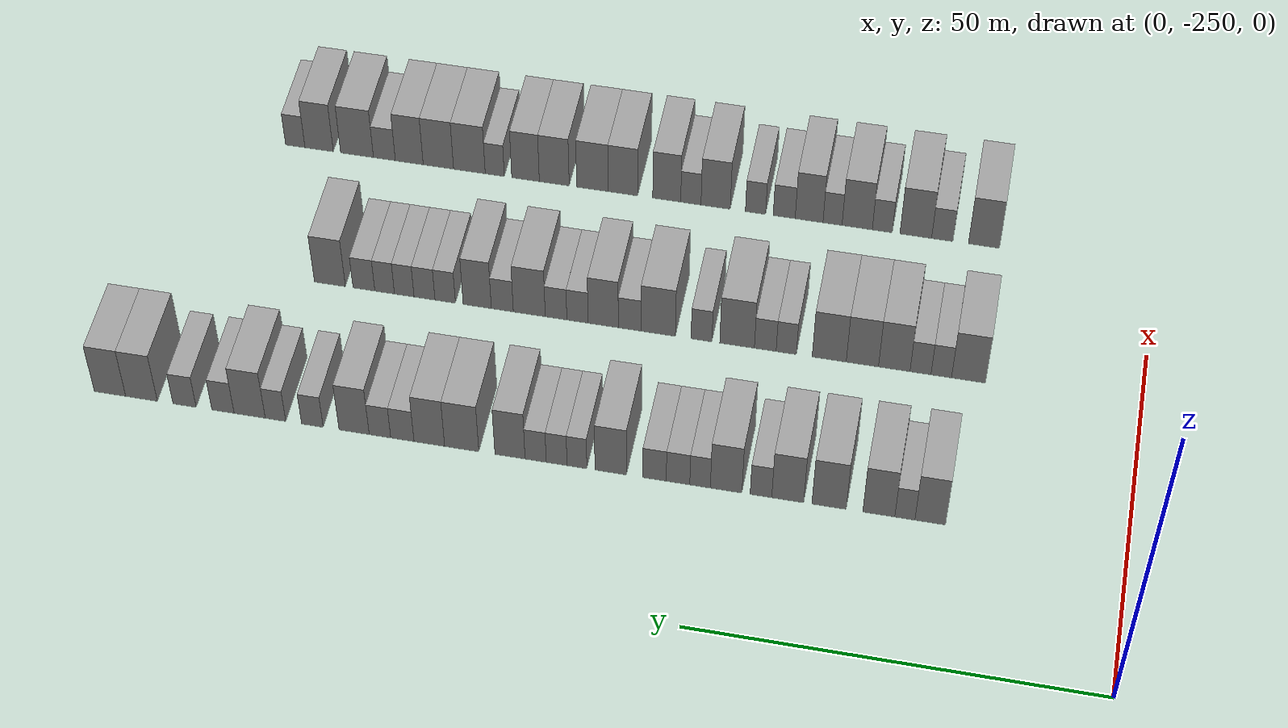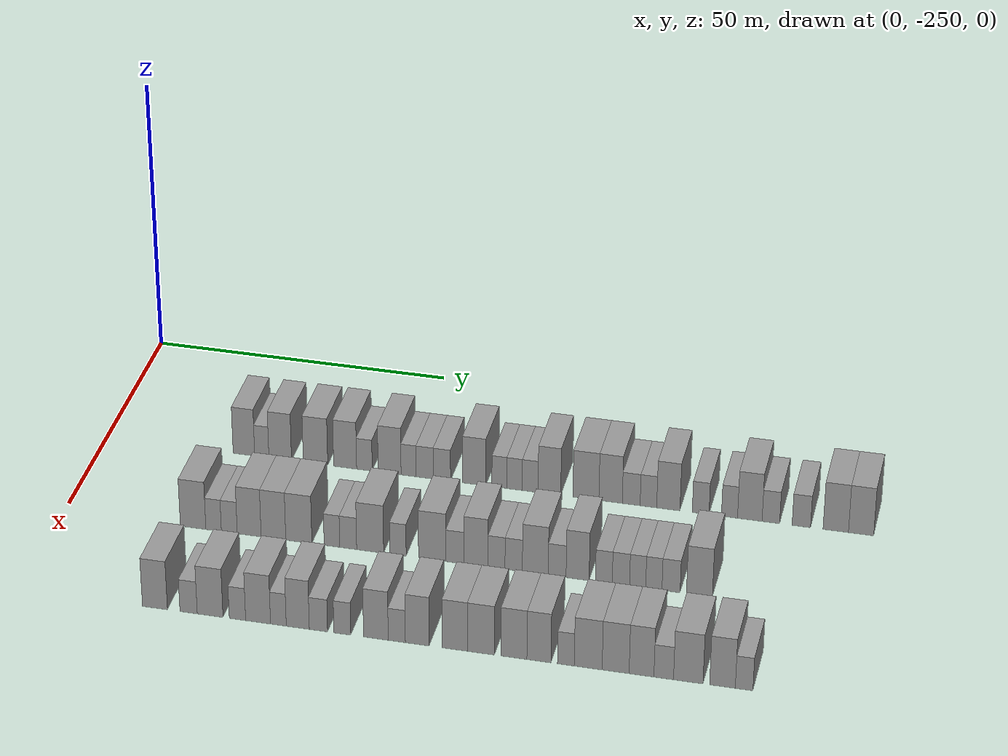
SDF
<sdf version="1.6">
 <world name="default">
  <model name="building_39">
   <static>1</static>
   <pose>25.0000 -226.5575 0 0.000000 0.000000 0.000000</pose>
   <link name="link">
    <pose>0 0 4.50 0 0 0</pose>
    <collision name="collision"><geometry><box><size>10.0000 3.6618 9.0000</size></box></geometry></collision>
    <visual name="visual">
     <cast_shadows>0</cast_shadows>
     <geometry><box><size>10.0000 3.6618 9.0000</size></box></geometry>
     <material>
      <script>
       <uri>model://grey_wall/materials/scripts</uri>
       <uri>model://grey_wall/materials/textures</uri>
       <name>vrc/grey_wall</name>
      </script>
     </material>
    </visual>
   </link>
  </model>
  <model name="building_40">
   <static>1</static>
   <pose>25.0000 -223.5219 0 0.000000 0.000000 0.000000</pose>
   <link name="link">
    <pose>0 0 3.00 0 0 0</pose>
    <collision name="collision"><geometry><box><size>10.0000 2.4094 6.0000</size></box></geometry></collision>
    <visual name="visual">
     <cast_shadows>0</cast_shadows>
     <geometry><box><size>10.0000 2.4094 6.0000</size></box></geometry>
     <material>
      <script>
       <uri>model://grey_wall/materials/scripts</uri>
       <uri>model://grey_wall/materials/textures</uri>
       <name>vrc/grey_wall</name>
      </script>
     </material>
    </visual>
   </link>
  </model>
  <model name="building_41">
   <static>1</static>
   <pose>25.0000 -220.3961 0 0.000000 0.000000 0.000000</pose>
   <link name="link">
    <pose>0 0 4.50 0 0 0</pose>
    <collision name="collision"><geometry><box><size>10.0000 3.8420 9.0000</size></box></geometry></collision>
    <visual name="visual">
     <cast_shadows>0</cast_shadows>
     <geometry><box><size>10.0000 3.8420 9.0000</size></box></geometry>
     <material>
      <script>
       <uri>model://grey_wall/materials/scripts</uri>
       <uri>model://grey_wall/materials/textures</uri>
       <name>vrc/grey_wall</name>
      </script>
     </material>
    </visual>
   </link>
  </model>
  <model name="building_42">
   <static>1</static>
   <pose>25.0000 -214.4099 0 0.000000 0.000000 0.000000</pose>
   <link name="link">
    <pose>0 0 4.50 0 0 0</pose>
    <collision name="collision"><geometry><box><size>10.0000 4.1304 9.0000</size></box></geometry></collision>
    <visual name="visual">
     <cast_shadows>0</cast_shadows>
     <geometry><box><size>10.0000 4.1304 9.0000</size></box></geometry>
     <material>
      <script>
       <uri>model://grey_wall/materials/scripts</uri>
       <uri>model://grey_wall/materials/textures</uri>
       <name>vrc/grey_wall</name>
      </script>
     </material>
    </visual>
   </link>
  </model>
  <model name="building_43">
   <static>1</static>
   <pose>25.0000 -209.4116 0 0.000000 0.000000 0.000000</pose>
   <link name="link">
    <pose>0 0 4.50 0 0 0</pose>
    <collision name="collision"><geometry><box><size>10.0000 3.8663 9.0000</size></box></geometry></collision>
    <visual name="visual">
     <cast_shadows>0</cast_shadows>
     <geometry><box><size>10.0000 3.8663 9.0000</size></box></geometry>
     <material>
      <script>
       <uri>model://grey_wall/materials/scripts</uri>
       <uri>model://grey_wall/materials/textures</uri>
       <name>vrc/grey_wall</name>
      </script>
     </material>
    </visual>
   </link>
  </model>
  <model name="building_44">
   <static>1</static>
   <pose>25.0000 -206.1708 0 0.000000 0.000000 0.000000</pose>
   <link name="link">
    <pose>0 0 3.00 0 0 0</pose>
    <collision name="collision"><geometry><box><size>10.0000 2.6153 6.0000</size></box></geometry></collision>
    <visual name="visual">
     <cast_shadows>0</cast_shadows>
     <geometry><box><size>10.0000 2.6153 6.0000</size></box></geometry>
     <material>
      <script>
       <uri>model://grey_wall/materials/scripts</uri>
       <uri>model://grey_wall/materials/textures</uri>
       <name>vrc/grey_wall</name>
      </script>
     </material>
    </visual>
   </link>
  </model>
  <model name="building_45">
   <static>1</static>
   <pose>25.0000 -201.9423 0 0.000000 0.000000 0.000000</pose>
   <link name="link">
    <pose>0 0 4.50 0 0 0</pose>
    <collision name="collision"><geometry><box><size>10.0000 3.8416 9.0000</size></box></geometry></collision>
    <visual name="visual">
     <cast_shadows>0</cast_shadows>
     <geometry><box><size>10.0000 3.8416 9.0000</size></box></geometry>
     <material>
      <script>
       <uri>model://grey_wall/materials/scripts</uri>
       <uri>model://grey_wall/materials/textures</uri>
       <name>vrc/grey_wall</name>
      </script>
     </material>
    </visual>
   </link>
  </model>
  <model name="building_46">
   <static>1</static>
   <pose>25.0000 -198.7667 0 0.000000 0.000000 0.000000</pose>
   <link name="link">
    <pose>0 0 3.00 0 0 0</pose>
    <collision name="collision"><geometry><box><size>10.0000 2.5095 6.0000</size></box></geometry></collision>
    <visual name="visual">
     <cast_shadows>0</cast_shadows>
     <geometry><box><size>10.0000 2.5095 6.0000</size></box></geometry>
     <material>
      <script>
       <uri>model://grey_wall/materials/scripts</uri>
       <uri>model://grey_wall/materials/textures</uri>
       <name>vrc/grey_wall</name>
      </script>
     </material>
    </visual>
   </link>
  </model>
  <model name="building_47">
   <static>1</static>
   <pose>25.0000 -196.0761 0 0.000000 0.000000 0.000000</pose>
   <link name="link">
    <pose>0 0 3.00 0 0 0</pose>
    <collision name="collision"><geometry><box><size>10.0000 2.8717 6.0000</size></box></geometry></collision>
    <visual name="visual">
     <cast_shadows>0</cast_shadows>
     <geometry><box><size>10.0000 2.8717 6.0000</size></box></geometry>
     <material>
      <script>
       <uri>model://grey_wall/materials/scripts</uri>
       <uri>model://grey_wall/materials/textures</uri>
       <name>vrc/grey_wall</name>
      </script>
     </material>
    </visual>
   </link>
  </model>
  <model name="building_48">
   <static>1</static>
   <pose>25.0000 -193.2054 0 0.000000 0.000000 0.000000</pose>
   <link name="link">
    <pose>0 0 3.00 0 0 0</pose>
    <collision name="collision"><geometry><box><size>10.0000 2.8697 6.0000</size></box></geometry></collision>
    <visual name="visual">
     <cast_shadows>0</cast_shadows>
     <geometry><box><size>10.0000 2.8697 6.0000</size></box></geometry>
     <material>
      <script>
       <uri>model://grey_wall/materials/scripts</uri>
       <uri>model://grey_wall/materials/textures</uri>
       <name>vrc/grey_wall</name>
      </script>
     </material>
    </visual>
   </link>
  </model>
  <model name="building_49">
   <static>1</static>
   <pose>25.0000 -187.8356 0 0.000000 0.000000 0.000000</pose>
   <link name="link">
    <pose>0 0 4.50 0 0 0</pose>
    <collision name="collision"><geometry><box><size>10.0000 3.8700 9.0000</size></box></geometry></collision>
    <visual name="visual">
     <cast_shadows>0</cast_shadows>
     <geometry><box><size>10.0000 3.8700 9.0000</size></box></geometry>
     <material>
      <script>
       <uri>model://grey_wall/materials/scripts</uri>
       <uri>model://grey_wall/materials/textures</uri>
       <name>vrc/grey_wall</name>
      </script>
     </material>
    </visual>
   </link>
  </model>
  <model name="building_50">
   <static>1</static>
   <pose>25.0000 -183.6765 0 0.000000 0.000000 0.000000</pose>
   <link name="link">
    <pose>0 0 3.00 0 0 0</pose>
    <collision name="collision"><geometry><box><size>10.0000 2.4484 6.0000</size></box></geometry></collision>
    <visual name="visual">
     <cast_shadows>0</cast_shadows>
     <geometry><box><size>10.0000 2.4484 6.0000</size></box></geometry>
     <material>
      <script>
       <uri>model://grey_wall/materials/scripts</uri>
       <uri>model://grey_wall/materials/textures</uri>
       <name>vrc/grey_wall</name>
      </script>
     </material>
    </visual>
   </link>
  </model>
  <model name="building_51">
   <static>1</static>
   <pose>25.0000 -181.1678 0 0.000000 0.000000 0.000000</pose>
   <link name="link">
    <pose>0 0 3.00 0 0 0</pose>
    <collision name="collision"><geometry><box><size>10.0000 2.5690 6.0000</size></box></geometry></collision>
    <visual name="visual">
     <cast_shadows>0</cast_shadows>
     <geometry><box><size>10.0000 2.5690 6.0000</size></box></geometry>
     <material>
      <script>
       <uri>model://grey_wall/materials/scripts</uri>
       <uri>model://grey_wall/materials/textures</uri>
       <name>vrc/grey_wall</name>
      </script>
     </material>
    </visual>
   </link>
  </model>
  <model name="building_52">
   <static>1</static>
   <pose>25.0000 -178.5773 0 0.000000 0.000000 0.000000</pose>
   <link name="link">
    <pose>0 0 3.00 0 0 0</pose>
    <collision name="collision"><geometry><box><size>10.0000 2.6120 6.0000</size></box></geometry></collision>
    <visual name="visual">
     <cast_shadows>0</cast_shadows>
     <geometry><box><size>10.0000 2.6120 6.0000</size></box></geometry>
     <material>
      <script>
       <uri>model://grey_wall/materials/scripts</uri>
       <uri>model://grey_wall/materials/textures</uri>
       <name>vrc/grey_wall</name>
      </script>
     </material>
    </visual>
   </link>
  </model>
  <model name="building_53">
   <static>1</static>
   <pose>25.0000 -175.4049 0 0.000000 0.000000 0.000000</pose>
   <link name="link">
    <pose>0 0 4.50 0 0 0</pose>
    <collision name="collision"><geometry><box><size>10.0000 3.7328 9.0000</size></box></geometry></collision>
    <visual name="visual">
     <cast_shadows>0</cast_shadows>
     <geometry><box><size>10.0000 3.7328 9.0000</size></box></geometry>
     <material>
      <script>
       <uri>model://grey_wall/materials/scripts</uri>
       <uri>model://grey_wall/materials/textures</uri>
       <name>vrc/grey_wall</name>
      </script>
     </material>
    </visual>
   </link>
  </model>
  <model name="building_54">
   <static>1</static>
   <pose>25.0000 -169.4101 0 0.000000 0.000000 0.000000</pose>
   <link name="link">
    <pose>0 0 4.50 0 0 0</pose>
    <collision name="collision"><geometry><box><size>10.0000 4.2567 9.0000</size></box></geometry></collision>
    <visual name="visual">
     <cast_shadows>0</cast_shadows>
     <geometry><box><size>10.0000 4.2567 9.0000</size></box></geometry>
     <material>
      <script>
       <uri>model://grey_wall/materials/scripts</uri>
       <uri>model://grey_wall/materials/textures</uri>
       <name>vrc/grey_wall</name>
      </script>
     </material>
    </visual>
   </link>
  </model>
  <model name="building_55">
   <static>1</static>
   <pose>25.0000 -165.3705 0 0.000000 0.000000 0.000000</pose>
   <link name="link">
    <pose>0 0 4.50 0 0 0</pose>
    <collision name="collision"><geometry><box><size>10.0000 3.8225 9.0000</size></box></geometry></collision>
    <visual name="visual">
     <cast_shadows>0</cast_shadows>
     <geometry><box><size>10.0000 3.8225 9.0000</size></box></geometry>
     <material>
      <script>
       <uri>model://grey_wall/materials/scripts</uri>
       <uri>model://grey_wall/materials/textures</uri>
       <name>vrc/grey_wall</name>
      </script>
     </material>
    </visual>
   </link>
  </model>
  <model name="building_56">
   <static>1</static>
   <pose>25.0000 -162.0023 0 0.000000 0.000000 0.000000</pose>
   <link name="link">
    <pose>0 0 3.00 0 0 0</pose>
    <collision name="collision"><geometry><box><size>10.0000 2.9139 6.0000</size></box></geometry></collision>
    <visual name="visual">
     <cast_shadows>0</cast_shadows>
     <geometry><box><size>10.0000 2.9139 6.0000</size></box></geometry>
     <material>
      <script>
       <uri>model://grey_wall/materials/scripts</uri>
       <uri>model://grey_wall/materials/textures</uri>
       <name>vrc/grey_wall</name>
      </script>
     </material>
    </visual>
   </link>
  </model>
  <model name="building_57">
   <static>1</static>
   <pose>25.0000 -159.1965 0 0.000000 0.000000 0.000000</pose>
   <link name="link">
    <pose>0 0 3.00 0 0 0</pose>
    <collision name="collision"><geometry><box><size>10.0000 2.6977 6.0000</size></box></geometry></collision>
    <visual name="visual">
     <cast_shadows>0</cast_shadows>
     <geometry><box><size>10.0000 2.6977 6.0000</size></box></geometry>
     <material>
      <script>
       <uri>model://grey_wall/materials/scripts</uri>
       <uri>model://grey_wall/materials/textures</uri>
       <name>vrc/grey_wall</name>
      </script>
     </material>
    </visual>
   </link>
  </model>
  <model name="building_58">
   <static>1</static>
   <pose>25.0000 -155.9564 0 0.000000 0.000000 0.000000</pose>
   <link name="link">
    <pose>0 0 4.50 0 0 0</pose>
    <collision name="collision"><geometry><box><size>10.0000 3.7825 9.0000</size></box></geometry></collision>
    <visual name="visual">
     <cast_shadows>0</cast_shadows>
     <geometry><box><size>10.0000 3.7825 9.0000</size></box></geometry>
     <material>
      <script>
       <uri>model://grey_wall/materials/scripts</uri>
       <uri>model://grey_wall/materials/textures</uri>
       <name>vrc/grey_wall</name>
      </script>
     </material>
    </visual>
   </link>
  </model>
  <model name="building_59">
   <static>1</static>
   <pose>25.0000 -150.7066 0 0.000000 0.000000 0.000000</pose>
   <link name="link">
    <pose>0 0 3.00 0 0 0</pose>
    <collision name="collision"><geometry><box><size>10.0000 2.7172 6.0000</size></box></geometry></collision>
    <visual name="visual">
     <cast_shadows>0</cast_shadows>
     <geometry><box><size>10.0000 2.7172 6.0000</size></box></geometry>
     <material>
      <script>
       <uri>model://grey_wall/materials/scripts</uri>
       <uri>model://grey_wall/materials/textures</uri>
       <name>vrc/grey_wall</name>
      </script>
     </material>
    </visual>
   </link>
  </model>
  <model name="building_60">
   <static>1</static>
   <pose>25.0000 -146.0507 0 0.000000 0.000000 0.000000</pose>
   <link name="link">
    <pose>0 0 3.00 0 0 0</pose>
    <collision name="collision"><geometry><box><size>10.0000 2.5946 6.0000</size></box></geometry></collision>
    <visual name="visual">
     <cast_shadows>0</cast_shadows>
     <geometry><box><size>10.0000 2.5946 6.0000</size></box></geometry>
     <material>
      <script>
       <uri>model://grey_wall/materials/scripts</uri>
       <uri>model://grey_wall/materials/textures</uri>
       <name>vrc/grey_wall</name>
      </script>
     </material>
    </visual>
   </link>
  </model>
  <model name="building_61">
   <static>1</static>
   <pose>25.0000 -142.7761 0 0.000000 0.000000 0.000000</pose>
   <link name="link">
    <pose>0 0 4.50 0 0 0</pose>
    <collision name="collision"><geometry><box><size>10.0000 3.9547 9.0000</size></box></geometry></collision>
    <visual name="visual">
     <cast_shadows>0</cast_shadows>
     <geometry><box><size>10.0000 3.9547 9.0000</size></box></geometry>
     <material>
      <script>
       <uri>model://grey_wall/materials/scripts</uri>
       <uri>model://grey_wall/materials/textures</uri>
       <name>vrc/grey_wall</name>
      </script>
     </material>
    </visual>
   </link>
  </model>
  <model name="building_62">
   <static>1</static>
   <pose>25.0000 -139.3859 0 0.000000 0.000000 0.000000</pose>
   <link name="link">
    <pose>0 0 3.00 0 0 0</pose>
    <collision name="collision"><geometry><box><size>10.0000 2.8256 6.0000</size></box></geometry></collision>
    <visual name="visual">
     <cast_shadows>0</cast_shadows>
     <geometry><box><size>10.0000 2.8256 6.0000</size></box></geometry>
     <material>
      <script>
       <uri>model://grey_wall/materials/scripts</uri>
       <uri>model://grey_wall/materials/textures</uri>
       <name>vrc/grey_wall</name>
      </script>
     </material>
    </visual>
   </link>
  </model>
  <model name="building_63">
   <static>1</static>
   <pose>25.0000 -134.4988 0 0.000000 0.000000 0.000000</pose>
   <link name="link">
    <pose>0 0 3.00 0 0 0</pose>
    <collision name="collision"><geometry><box><size>10.0000 2.9486 6.0000</size></box></geometry></collision>
    <visual name="visual">
     <cast_shadows>0</cast_shadows>
     <geometry><box><size>10.0000 2.9486 6.0000</size></box></geometry>
     <material>
      <script>
       <uri>model://grey_wall/materials/scripts</uri>
       <uri>model://grey_wall/materials/textures</uri>
       <name>vrc/grey_wall</name>
      </script>
     </material>
    </visual>
   </link>
  </model>
  <model name="building_64">
   <static>1</static>
   <pose>25.0000 -128.9988 0 0.000000 0.000000 0.000000</pose>
   <link name="link">
    <pose>0 0 4.50 0 0 0</pose>
    <collision name="collision"><geometry><box><size>10.0000 4.0515 9.0000</size></box></geometry></collision>
    <visual name="visual">
     <cast_shadows>0</cast_shadows>
     <geometry><box><size>10.0000 4.0515 9.0000</size></box></geometry>
     <material>
      <script>
       <uri>model://grey_wall/materials/scripts</uri>
       <uri>model://grey_wall/materials/textures</uri>
       <name>vrc/grey_wall</name>
      </script>
     </material>
    </visual>
   </link>
  </model>
  <model name="building_65">
   <static>1</static>
   <pose>25.0000 -124.9655 0 0.000000 0.000000 0.000000</pose>
   <link name="link">
    <pose>0 0 4.50 0 0 0</pose>
    <collision name="collision"><geometry><box><size>10.0000 4.0150 9.0000</size></box></geometry></collision>
    <visual name="visual">
     <cast_shadows>0</cast_shadows>
     <geometry><box><size>10.0000 4.0150 9.0000</size></box></geometry>
     <material>
      <script>
       <uri>model://grey_wall/materials/scripts</uri>
       <uri>model://grey_wall/materials/textures</uri>
       <name>vrc/grey_wall</name>
      </script>
     </material>
    </visual>
   </link>
  </model>
  <model name="building_233">
   <static>1</static>
   <pose>47.0000 -228.6042 0 0.000000 0.000000 0.000000</pose>
   <link name="link">
    <pose>0 0 4.50 0 0 0</pose>
    <collision name="collision"><geometry><box><size>10.0000 4.2199 9.0000</size></box></geometry></collision>
    <visual name="visual">
     <cast_shadows>0</cast_shadows>
     <geometry><box><size>10.0000 4.2199 9.0000</size></box></geometry>
     <material>
      <script>
       <uri>model://grey_wall/materials/scripts</uri>
       <uri>model://grey_wall/materials/textures</uri>
       <name>vrc/grey_wall</name>
      </script>
     </material>
    </visual>
   </link>
  </model>
  <model name="building_234">
   <static>1</static>
   <pose>47.0000 -225.2168 0 0.000000 0.000000 0.000000</pose>
   <link name="link">
    <pose>0 0 3.00 0 0 0</pose>
    <collision name="collision"><geometry><box><size>10.0000 2.5550 6.0000</size></box></geometry></collision>
    <visual name="visual">
     <cast_shadows>0</cast_shadows>
     <geometry><box><size>10.0000 2.5550 6.0000</size></box></geometry>
     <material>
      <script>
       <uri>model://grey_wall/materials/scripts</uri>
       <uri>model://grey_wall/materials/textures</uri>
       <name>vrc/grey_wall</name>
      </script>
     </material>
    </visual>
   </link>
  </model>
  <model name="building_235">
   <static>1</static>
   <pose>47.0000 -222.6309 0 0.000000 0.000000 0.000000</pose>
   <link name="link">
    <pose>0 0 3.00 0 0 0</pose>
    <collision name="collision"><geometry><box><size>10.0000 2.6168 6.0000</size></box></geometry></collision>
    <visual name="visual">
     <cast_shadows>0</cast_shadows>
     <geometry><box><size>10.0000 2.6168 6.0000</size></box></geometry>
     <material>
      <script>
       <uri>model://grey_wall/materials/scripts</uri>
       <uri>model://grey_wall/materials/textures</uri>
       <name>vrc/grey_wall</name>
      </script>
     </material>
    </visual>
   </link>
  </model>
  <model name="building_236">
   <static>1</static>
   <pose>47.0000 -219.3566 0 0.000000 0.000000 0.000000</pose>
   <link name="link">
    <pose>0 0 4.50 0 0 0</pose>
    <collision name="collision"><geometry><box><size>10.0000 3.9318 9.0000</size></box></geometry></collision>
    <visual name="visual">
     <cast_shadows>0</cast_shadows>
     <geometry><box><size>10.0000 3.9318 9.0000</size></box></geometry>
     <material>
      <script>
       <uri>model://grey_wall/materials/scripts</uri>
       <uri>model://grey_wall/materials/textures</uri>
       <name>vrc/grey_wall</name>
      </script>
     </material>
    </visual>
   </link>
  </model>
  <model name="building_237">
   <static>1</static>
   <pose>47.0000 -215.3696 0 0.000000 0.000000 0.000000</pose>
   <link name="link">
    <pose>0 0 4.50 0 0 0</pose>
    <collision name="collision"><geometry><box><size>10.0000 4.0422 9.0000</size></box></geometry></collision>
    <visual name="visual">
     <cast_shadows>0</cast_shadows>
     <geometry><box><size>10.0000 4.0422 9.0000</size></box></geometry>
     <material>
      <script>
       <uri>model://grey_wall/materials/scripts</uri>
       <uri>model://grey_wall/materials/textures</uri>
       <name>vrc/grey_wall</name>
      </script>
     </material>
    </visual>
   </link>
  </model>
  <model name="building_238">
   <static>1</static>
   <pose>47.0000 -211.2126 0 0.000000 0.000000 0.000000</pose>
   <link name="link">
    <pose>0 0 4.50 0 0 0</pose>
    <collision name="collision"><geometry><box><size>10.0000 4.2717 9.0000</size></box></geometry></collision>
    <visual name="visual">
     <cast_shadows>0</cast_shadows>
     <geometry><box><size>10.0000 4.2717 9.0000</size></box></geometry>
     <material>
      <script>
       <uri>model://grey_wall/materials/scripts</uri>
       <uri>model://grey_wall/materials/textures</uri>
       <name>vrc/grey_wall</name>
      </script>
     </material>
    </visual>
   </link>
  </model>
  <model name="building_239">
   <static>1</static>
   <pose>47.0000 -205.8019 0 0.000000 0.000000 0.000000</pose>
   <link name="link">
    <pose>0 0 3.00 0 0 0</pose>
    <collision name="collision"><geometry><box><size>10.0000 2.5496 6.0000</size></box></geometry></collision>
    <visual name="visual">
     <cast_shadows>0</cast_shadows>
     <geometry><box><size>10.0000 2.5496 6.0000</size></box></geometry>
     <material>
      <script>
       <uri>model://grey_wall/materials/scripts</uri>
       <uri>model://grey_wall/materials/textures</uri>
       <name>vrc/grey_wall</name>
      </script>
     </material>
    </visual>
   </link>
  </model>
  <model name="building_240">
   <static>1</static>
   <pose>47.0000 -203.1543 0 0.000000 0.000000 0.000000</pose>
   <link name="link">
    <pose>0 0 3.00 0 0 0</pose>
    <collision name="collision"><geometry><box><size>10.0000 2.7456 6.0000</size></box></geometry></collision>
    <visual name="visual">
     <cast_shadows>0</cast_shadows>
     <geometry><box><size>10.0000 2.7456 6.0000</size></box></geometry>
     <material>
      <script>
       <uri>model://grey_wall/materials/scripts</uri>
       <uri>model://grey_wall/materials/textures</uri>
       <name>vrc/grey_wall</name>
      </script>
     </material>
    </visual>
   </link>
  </model>
  <model name="building_241">
   <static>1</static>
   <pose>47.0000 -199.5931 0 0.000000 0.000000 0.000000</pose>
   <link name="link">
    <pose>0 0 4.50 0 0 0</pose>
    <collision name="collision"><geometry><box><size>10.0000 4.3769 9.0000</size></box></geometry></collision>
    <visual name="visual">
     <cast_shadows>0</cast_shadows>
     <geometry><box><size>10.0000 4.3769 9.0000</size></box></geometry>
     <material>
      <script>
       <uri>model://grey_wall/materials/scripts</uri>
       <uri>model://grey_wall/materials/textures</uri>
       <name>vrc/grey_wall</name>
      </script>
     </material>
    </visual>
   </link>
  </model>
  <model name="building_242">
   <static>1</static>
   <pose>47.0000 -195.0827 0 0.000000 0.000000 0.000000</pose>
   <link name="link">
    <pose>0 0 3.00 0 0 0</pose>
    <collision name="collision"><geometry><box><size>10.0000 2.6437 6.0000</size></box></geometry></collision>
    <visual name="visual">
     <cast_shadows>0</cast_shadows>
     <geometry><box><size>10.0000 2.6437 6.0000</size></box></geometry>
     <material>
      <script>
       <uri>model://grey_wall/materials/scripts</uri>
       <uri>model://grey_wall/materials/textures</uri>
       <name>vrc/grey_wall</name>
      </script>
     </material>
    </visual>
   </link>
  </model>
  <model name="building_243">
   <static>1</static>
   <pose>47.0000 -189.5637 0 0.000000 0.000000 0.000000</pose>
   <link name="link">
    <pose>0 0 4.50 0 0 0</pose>
    <collision name="collision"><geometry><box><size>10.0000 4.3944 9.0000</size></box></geometry></collision>
    <visual name="visual">
     <cast_shadows>0</cast_shadows>
     <geometry><box><size>10.0000 4.3944 9.0000</size></box></geometry>
     <material>
      <script>
       <uri>model://grey_wall/materials/scripts</uri>
       <uri>model://grey_wall/materials/textures</uri>
       <name>vrc/grey_wall</name>
      </script>
     </material>
    </visual>
   </link>
  </model>
  <model name="building_244">
   <static>1</static>
   <pose>47.0000 -185.9221 0 0.000000 0.000000 0.000000</pose>
   <link name="link">
    <pose>0 0 3.00 0 0 0</pose>
    <collision name="collision"><geometry><box><size>10.0000 2.8888 6.0000</size></box></geometry></collision>
    <visual name="visual">
     <cast_shadows>0</cast_shadows>
     <geometry><box><size>10.0000 2.8888 6.0000</size></box></geometry>
     <material>
      <script>
       <uri>model://grey_wall/materials/scripts</uri>
       <uri>model://grey_wall/materials/textures</uri>
       <name>vrc/grey_wall</name>
      </script>
     </material>
    </visual>
   </link>
  </model>
  <model name="building_245">
   <static>1</static>
   <pose>47.0000 -182.5445 0 0.000000 0.000000 0.000000</pose>
   <link name="link">
    <pose>0 0 4.50 0 0 0</pose>
    <collision name="collision"><geometry><box><size>10.0000 3.8663 9.0000</size></box></geometry></collision>
    <visual name="visual">
     <cast_shadows>0</cast_shadows>
     <geometry><box><size>10.0000 3.8663 9.0000</size></box></geometry>
     <material>
      <script>
       <uri>model://grey_wall/materials/scripts</uri>
       <uri>model://grey_wall/materials/textures</uri>
       <name>vrc/grey_wall</name>
      </script>
     </material>
    </visual>
   </link>
  </model>
  <model name="building_246">
   <static>1</static>
   <pose>47.0000 -179.2460 0 0.000000 0.000000 0.000000</pose>
   <link name="link">
    <pose>0 0 3.00 0 0 0</pose>
    <collision name="collision"><geometry><box><size>10.0000 2.7309 6.0000</size></box></geometry></collision>
    <visual name="visual">
     <cast_shadows>0</cast_shadows>
     <geometry><box><size>10.0000 2.7309 6.0000</size></box></geometry>
     <material>
      <script>
       <uri>model://grey_wall/materials/scripts</uri>
       <uri>model://grey_wall/materials/textures</uri>
       <name>vrc/grey_wall</name>
      </script>
     </material>
    </visual>
   </link>
  </model>
  <model name="building_247">
   <static>1</static>
   <pose>47.0000 -176.4946 0 0.000000 0.000000 0.000000</pose>
   <link name="link">
    <pose>0 0 3.00 0 0 0</pose>
    <collision name="collision"><geometry><box><size>10.0000 2.7718 6.0000</size></box></geometry></collision>
    <visual name="visual">
     <cast_shadows>0</cast_shadows>
     <geometry><box><size>10.0000 2.7718 6.0000</size></box></geometry>
     <material>
      <script>
       <uri>model://grey_wall/materials/scripts</uri>
       <uri>model://grey_wall/materials/textures</uri>
       <name>vrc/grey_wall</name>
      </script>
     </material>
    </visual>
   </link>
  </model>
  <model name="building_248">
   <static>1</static>
   <pose>47.0000 -173.0493 0 0.000000 0.000000 0.000000</pose>
   <link name="link">
    <pose>0 0 4.50 0 0 0</pose>
    <collision name="collision"><geometry><box><size>10.0000 4.1189 9.0000</size></box></geometry></collision>
    <visual name="visual">
     <cast_shadows>0</cast_shadows>
     <geometry><box><size>10.0000 4.1189 9.0000</size></box></geometry>
     <material>
      <script>
       <uri>model://grey_wall/materials/scripts</uri>
       <uri>model://grey_wall/materials/textures</uri>
       <name>vrc/grey_wall</name>
      </script>
     </material>
    </visual>
   </link>
  </model>
  <model name="building_249">
   <static>1</static>
   <pose>47.0000 -169.5716 0 0.000000 0.000000 0.000000</pose>
   <link name="link">
    <pose>0 0 3.00 0 0 0</pose>
    <collision name="collision"><geometry><box><size>10.0000 2.8365 6.0000</size></box></geometry></collision>
    <visual name="visual">
     <cast_shadows>0</cast_shadows>
     <geometry><box><size>10.0000 2.8365 6.0000</size></box></geometry>
     <material>
      <script>
       <uri>model://grey_wall/materials/scripts</uri>
       <uri>model://grey_wall/materials/textures</uri>
       <name>vrc/grey_wall</name>
      </script>
     </material>
    </visual>
   </link>
  </model>
  <model name="building_250">
   <static>1</static>
   <pose>47.0000 -166.3284 0 0.000000 0.000000 0.000000</pose>
   <link name="link">
    <pose>0 0 4.50 0 0 0</pose>
    <collision name="collision"><geometry><box><size>10.0000 3.6499 9.0000</size></box></geometry></collision>
    <visual name="visual">
     <cast_shadows>0</cast_shadows>
     <geometry><box><size>10.0000 3.6499 9.0000</size></box></geometry>
     <material>
      <script>
       <uri>model://grey_wall/materials/scripts</uri>
       <uri>model://grey_wall/materials/textures</uri>
       <name>vrc/grey_wall</name>
      </script>
     </material>
    </visual>
   </link>
  </model>
  <model name="building_251">
   <static>1</static>
   <pose>47.0000 -162.1733 0 0.000000 0.000000 0.000000</pose>
   <link name="link">
    <pose>0 0 3.00 0 0 0</pose>
    <collision name="collision"><geometry><box><size>10.0000 2.6602 6.0000</size></box></geometry></collision>
    <visual name="visual">
     <cast_shadows>0</cast_shadows>
     <geometry><box><size>10.0000 2.6602 6.0000</size></box></geometry>
     <material>
      <script>
       <uri>model://grey_wall/materials/scripts</uri>
       <uri>model://grey_wall/materials/textures</uri>
       <name>vrc/grey_wall</name>
      </script>
     </material>
    </visual>
   </link>
  </model>
  <model name="building_252">
   <static>1</static>
   <pose>47.0000 -159.4795 0 0.000000 0.000000 0.000000</pose>
   <link name="link">
    <pose>0 0 3.00 0 0 0</pose>
    <collision name="collision"><geometry><box><size>10.0000 2.7275 6.0000</size></box></geometry></collision>
    <visual name="visual">
     <cast_shadows>0</cast_shadows>
     <geometry><box><size>10.0000 2.7275 6.0000</size></box></geometry>
     <material>
      <script>
       <uri>model://grey_wall/materials/scripts</uri>
       <uri>model://grey_wall/materials/textures</uri>
       <name>vrc/grey_wall</name>
      </script>
     </material>
    </visual>
   </link>
  </model>
  <model name="building_253">
   <static>1</static>
   <pose>47.0000 -156.8428 0 0.000000 0.000000 0.000000</pose>
   <link name="link">
    <pose>0 0 3.00 0 0 0</pose>
    <collision name="collision"><geometry><box><size>10.0000 2.5459 6.0000</size></box></geometry></collision>
    <visual name="visual">
     <cast_shadows>0</cast_shadows>
     <geometry><box><size>10.0000 2.5459 6.0000</size></box></geometry>
     <material>
      <script>
       <uri>model://grey_wall/materials/scripts</uri>
       <uri>model://grey_wall/materials/textures</uri>
       <name>vrc/grey_wall</name>
      </script>
     </material>
    </visual>
   </link>
  </model>
  <model name="building_254">
   <static>1</static>
   <pose>47.0000 -154.2889 0 0.000000 0.000000 0.000000</pose>
   <link name="link">
    <pose>0 0 3.00 0 0 0</pose>
    <collision name="collision"><geometry><box><size>10.0000 2.5618 6.0000</size></box></geometry></collision>
    <visual name="visual">
     <cast_shadows>0</cast_shadows>
     <geometry><box><size>10.0000 2.5618 6.0000</size></box></geometry>
     <material>
      <script>
       <uri>model://grey_wall/materials/scripts</uri>
       <uri>model://grey_wall/materials/textures</uri>
       <name>vrc/grey_wall</name>
      </script>
     </material>
    </visual>
   </link>
  </model>
  <model name="building_255">
   <static>1</static>
   <pose>47.0000 -151.5843 0 0.000000 0.000000 0.000000</pose>
   <link name="link">
    <pose>0 0 3.00 0 0 0</pose>
    <collision name="collision"><geometry><box><size>10.0000 2.8473 6.0000</size></box></geometry></collision>
    <visual name="visual">
     <cast_shadows>0</cast_shadows>
     <geometry><box><size>10.0000 2.8473 6.0000</size></box></geometry>
     <material>
      <script>
       <uri>model://grey_wall/materials/scripts</uri>
       <uri>model://grey_wall/materials/textures</uri>
       <name>vrc/grey_wall</name>
      </script>
     </material>
    </visual>
   </link>
  </model>
  <model name="building_256">
   <static>1</static>
   <pose>47.0000 -147.1324 0 0.000000 0.000000 0.000000</pose>
   <link name="link">
    <pose>0 0 4.50 0 0 0</pose>
    <collision name="collision"><geometry><box><size>10.0000 4.0565 9.0000</size></box></geometry></collision>
    <visual name="visual">
     <cast_shadows>0</cast_shadows>
     <geometry><box><size>10.0000 4.0565 9.0000</size></box></geometry>
     <material>
      <script>
       <uri>model://grey_wall/materials/scripts</uri>
       <uri>model://grey_wall/materials/textures</uri>
       <name>vrc/grey_wall</name>
      </script>
     </material>
    </visual>
   </link>
  </model>
  <model name="building_414">
   <static>1</static>
   <pose>69.0000 -228.0803 0 0.000000 0.000000 0.000000</pose>
   <link name="link">
    <pose>0 0 4.50 0 0 0</pose>
    <collision name="collision"><geometry><box><size>10.0000 3.9993 9.0000</size></box></geometry></collision>
    <visual name="visual">
     <cast_shadows>0</cast_shadows>
     <geometry><box><size>10.0000 3.9993 9.0000</size></box></geometry>
     <material>
      <script>
       <uri>model://grey_wall/materials/scripts</uri>
       <uri>model://grey_wall/materials/textures</uri>
       <name>vrc/grey_wall</name>
      </script>
     </material>
    </visual>
   </link>
  </model>
  <model name="building_415">
   <static>1</static>
   <pose>69.0000 -222.6998 0 0.000000 0.000000 0.000000</pose>
   <link name="link">
    <pose>0 0 3.00 0 0 0</pose>
    <collision name="collision"><geometry><box><size>10.0000 2.7617 6.0000</size></box></geometry></collision>
    <visual name="visual">
     <cast_shadows>0</cast_shadows>
     <geometry><box><size>10.0000 2.7617 6.0000</size></box></geometry>
     <material>
      <script>
       <uri>model://grey_wall/materials/scripts</uri>
       <uri>model://grey_wall/materials/textures</uri>
       <name>vrc/grey_wall</name>
      </script>
     </material>
    </visual>
   </link>
  </model>
  <model name="building_416">
   <static>1</static>
   <pose>69.0000 -219.2652 0 0.000000 0.000000 0.000000</pose>
   <link name="link">
    <pose>0 0 4.50 0 0 0</pose>
    <collision name="collision"><geometry><box><size>10.0000 4.1074 9.0000</size></box></geometry></collision>
    <visual name="visual">
     <cast_shadows>0</cast_shadows>
     <geometry><box><size>10.0000 4.1074 9.0000</size></box></geometry>
     <material>
      <script>
       <uri>model://grey_wall/materials/scripts</uri>
       <uri>model://grey_wall/materials/textures</uri>
       <name>vrc/grey_wall</name>
      </script>
     </material>
    </visual>
   </link>
  </model>
  <model name="building_417">
   <static>1</static>
   <pose>69.0000 -214.9117 0 0.000000 0.000000 0.000000</pose>
   <link name="link">
    <pose>0 0 3.00 0 0 0</pose>
    <collision name="collision"><geometry><box><size>10.0000 2.5997 6.0000</size></box></geometry></collision>
    <visual name="visual">
     <cast_shadows>0</cast_shadows>
     <geometry><box><size>10.0000 2.5997 6.0000</size></box></geometry>
     <material>
      <script>
       <uri>model://grey_wall/materials/scripts</uri>
       <uri>model://grey_wall/materials/textures</uri>
       <name>vrc/grey_wall</name>
      </script>
     </material>
    </visual>
   </link>
  </model>
  <model name="building_418">
   <static>1</static>
   <pose>69.0000 -211.6398 0 0.000000 0.000000 0.000000</pose>
   <link name="link">
    <pose>0 0 4.50 0 0 0</pose>
    <collision name="collision"><geometry><box><size>10.0000 3.9440 9.0000</size></box></geometry></collision>
    <visual name="visual">
     <cast_shadows>0</cast_shadows>
     <geometry><box><size>10.0000 3.9440 9.0000</size></box></geometry>
     <material>
      <script>
       <uri>model://grey_wall/materials/scripts</uri>
       <uri>model://grey_wall/materials/textures</uri>
       <name>vrc/grey_wall</name>
      </script>
     </material>
    </visual>
   </link>
  </model>
  <model name="building_419">
   <static>1</static>
   <pose>69.0000 -208.4242 0 0.000000 0.000000 0.000000</pose>
   <link name="link">
    <pose>0 0 3.00 0 0 0</pose>
    <collision name="collision"><geometry><box><size>10.0000 2.4872 6.0000</size></box></geometry></collision>
    <visual name="visual">
     <cast_shadows>0</cast_shadows>
     <geometry><box><size>10.0000 2.4872 6.0000</size></box></geometry>
     <material>
      <script>
       <uri>model://grey_wall/materials/scripts</uri>
       <uri>model://grey_wall/materials/textures</uri>
       <name>vrc/grey_wall</name>
      </script>
     </material>
    </visual>
   </link>
  </model>
  <model name="building_420">
   <static>1</static>
   <pose>69.0000 -205.3602 0 0.000000 0.000000 0.000000</pose>
   <link name="link">
    <pose>0 0 4.50 0 0 0</pose>
    <collision name="collision"><geometry><box><size>10.0000 3.6410 9.0000</size></box></geometry></collision>
    <visual name="visual">
     <cast_shadows>0</cast_shadows>
     <geometry><box><size>10.0000 3.6410 9.0000</size></box></geometry>
     <material>
      <script>
       <uri>model://grey_wall/materials/scripts</uri>
       <uri>model://grey_wall/materials/textures</uri>
       <name>vrc/grey_wall</name>
      </script>
     </material>
    </visual>
   </link>
  </model>
  <model name="building_421">
   <static>1</static>
   <pose>69.0000 -202.1025 0 0.000000 0.000000 0.000000</pose>
   <link name="link">
    <pose>0 0 3.00 0 0 0</pose>
    <collision name="collision"><geometry><box><size>10.0000 2.8744 6.0000</size></box></geometry></collision>
    <visual name="visual">
     <cast_shadows>0</cast_shadows>
     <geometry><box><size>10.0000 2.8744 6.0000</size></box></geometry>
     <material>
      <script>
       <uri>model://grey_wall/materials/scripts</uri>
       <uri>model://grey_wall/materials/textures</uri>
       <name>vrc/grey_wall</name>
      </script>
     </material>
    </visual>
   </link>
  </model>
  <model name="building_422">
   <static>1</static>
   <pose>69.0000 -198.3391 0 0.000000 0.000000 0.000000</pose>
   <link name="link">
    <pose>0 0 3.00 0 0 0</pose>
    <collision name="collision"><geometry><box><size>10.0000 2.6523 6.0000</size></box></geometry></collision>
    <visual name="visual">
     <cast_shadows>0</cast_shadows>
     <geometry><box><size>10.0000 2.6523 6.0000</size></box></geometry>
     <material>
      <script>
       <uri>model://grey_wall/materials/scripts</uri>
       <uri>model://grey_wall/materials/textures</uri>
       <name>vrc/grey_wall</name>
      </script>
     </material>
    </visual>
   </link>
  </model>
  <model name="building_423">
   <static>1</static>
   <pose>69.0000 -193.0839 0 0.000000 0.000000 0.000000</pose>
   <link name="link">
    <pose>0 0 4.50 0 0 0</pose>
    <collision name="collision"><geometry><box><size>10.0000 3.8582 9.0000</size></box></geometry></collision>
    <visual name="visual">
     <cast_shadows>0</cast_shadows>
     <geometry><box><size>10.0000 3.8582 9.0000</size></box></geometry>
     <material>
      <script>
       <uri>model://grey_wall/materials/scripts</uri>
       <uri>model://grey_wall/materials/textures</uri>
       <name>vrc/grey_wall</name>
      </script>
     </material>
    </visual>
   </link>
  </model>
  <model name="building_424">
   <static>1</static>
   <pose>69.0000 -189.8160 0 0.000000 0.000000 0.000000</pose>
   <link name="link">
    <pose>0 0 3.00 0 0 0</pose>
    <collision name="collision"><geometry><box><size>10.0000 2.6776 6.0000</size></box></geometry></collision>
    <visual name="visual">
     <cast_shadows>0</cast_shadows>
     <geometry><box><size>10.0000 2.6776 6.0000</size></box></geometry>
     <material>
      <script>
       <uri>model://grey_wall/materials/scripts</uri>
       <uri>model://grey_wall/materials/textures</uri>
       <name>vrc/grey_wall</name>
      </script>
     </material>
    </visual>
   </link>
  </model>
  <model name="building_425">
   <static>1</static>
   <pose>69.0000 -186.6248 0 0.000000 0.000000 0.000000</pose>
   <link name="link">
    <pose>0 0 4.50 0 0 0</pose>
    <collision name="collision"><geometry><box><size>10.0000 3.7048 9.0000</size></box></geometry></collision>
    <visual name="visual">
     <cast_shadows>0</cast_shadows>
     <geometry><box><size>10.0000 3.7048 9.0000</size></box></geometry>
     <material>
      <script>
       <uri>model://grey_wall/materials/scripts</uri>
       <uri>model://grey_wall/materials/textures</uri>
       <name>vrc/grey_wall</name>
      </script>
     </material>
    </visual>
   </link>
  </model>
  <model name="building_426">
   <static>1</static>
   <pose>69.0000 -180.8105 0 0.000000 0.000000 0.000000</pose>
   <link name="link">
    <pose>0 0 4.50 0 0 0</pose>
    <collision name="collision"><geometry><box><size>10.0000 3.9238 9.0000</size></box></geometry></collision>
    <visual name="visual">
     <cast_shadows>0</cast_shadows>
     <geometry><box><size>10.0000 3.9238 9.0000</size></box></geometry>
     <material>
      <script>
       <uri>model://grey_wall/materials/scripts</uri>
       <uri>model://grey_wall/materials/textures</uri>
       <name>vrc/grey_wall</name>
      </script>
     </material>
    </visual>
   </link>
  </model>
  <model name="building_427">
   <static>1</static>
   <pose>69.0000 -176.7491 0 0.000000 0.000000 0.000000</pose>
   <link name="link">
    <pose>0 0 4.50 0 0 0</pose>
    <collision name="collision"><geometry><box><size>10.0000 4.1989 9.0000</size></box></geometry></collision>
    <visual name="visual">
     <cast_shadows>0</cast_shadows>
     <geometry><box><size>10.0000 4.1989 9.0000</size></box></geometry>
     <material>
      <script>
       <uri>model://grey_wall/materials/scripts</uri>
       <uri>model://grey_wall/materials/textures</uri>
       <name>vrc/grey_wall</name>
      </script>
     </material>
    </visual>
   </link>
  </model>
  <model name="building_428">
   <static>1</static>
   <pose>69.0000 -171.6527 0 0.000000 0.000000 0.000000</pose>
   <link name="link">
    <pose>0 0 4.50 0 0 0</pose>
    <collision name="collision"><geometry><box><size>10.0000 3.9939 9.0000</size></box></geometry></collision>
    <visual name="visual">
     <cast_shadows>0</cast_shadows>
     <geometry><box><size>10.0000 3.9939 9.0000</size></box></geometry>
     <material>
      <script>
       <uri>model://grey_wall/materials/scripts</uri>
       <uri>model://grey_wall/materials/textures</uri>
       <name>vrc/grey_wall</name>
      </script>
     </material>
    </visual>
   </link>
  </model>
  <model name="building_429">
   <static>1</static>
   <pose>69.0000 -167.8071 0 0.000000 0.000000 0.000000</pose>
   <link name="link">
    <pose>0 0 4.50 0 0 0</pose>
    <collision name="collision"><geometry><box><size>10.0000 3.6974 9.0000</size></box></geometry></collision>
    <visual name="visual">
     <cast_shadows>0</cast_shadows>
     <geometry><box><size>10.0000 3.6974 9.0000</size></box></geometry>
     <material>
      <script>
       <uri>model://grey_wall/materials/scripts</uri>
       <uri>model://grey_wall/materials/textures</uri>
       <name>vrc/grey_wall</name>
      </script>
     </material>
    </visual>
   </link>
  </model>
  <model name="building_430">
   <static>1</static>
   <pose>69.0000 -163.6756 0 0.000000 0.000000 0.000000</pose>
   <link name="link">
    <pose>0 0 3.00 0 0 0</pose>
    <collision name="collision"><geometry><box><size>10.0000 2.5655 6.0000</size></box></geometry></collision>
    <visual name="visual">
     <cast_shadows>0</cast_shadows>
     <geometry><box><size>10.0000 2.5655 6.0000</size></box></geometry>
     <material>
      <script>
       <uri>model://grey_wall/materials/scripts</uri>
       <uri>model://grey_wall/materials/textures</uri>
       <name>vrc/grey_wall</name>
      </script>
     </material>
    </visual>
   </link>
  </model>
  <model name="building_431">
   <static>1</static>
   <pose>69.0000 -160.2607 0 0.000000 0.000000 0.000000</pose>
   <link name="link">
    <pose>0 0 4.50 0 0 0</pose>
    <collision name="collision"><geometry><box><size>10.0000 4.2644 9.0000</size></box></geometry></collision>
    <visual name="visual">
     <cast_shadows>0</cast_shadows>
     <geometry><box><size>10.0000 4.2644 9.0000</size></box></geometry>
     <material>
      <script>
       <uri>model://grey_wall/materials/scripts</uri>
       <uri>model://grey_wall/materials/textures</uri>
       <name>vrc/grey_wall</name>
      </script>
     </material>
    </visual>
   </link>
  </model>
  <model name="building_432">
   <static>1</static>
   <pose>69.0000 -156.0737 0 0.000000 0.000000 0.000000</pose>
   <link name="link">
    <pose>0 0 4.50 0 0 0</pose>
    <collision name="collision"><geometry><box><size>10.0000 4.1095 9.0000</size></box></geometry></collision>
    <visual name="visual">
     <cast_shadows>0</cast_shadows>
     <geometry><box><size>10.0000 4.1095 9.0000</size></box></geometry>
     <material>
      <script>
       <uri>model://grey_wall/materials/scripts</uri>
       <uri>model://grey_wall/materials/textures</uri>
       <name>vrc/grey_wall</name>
      </script>
     </material>
    </visual>
   </link>
  </model>
  <model name="building_433">
   <static>1</static>
   <pose>69.0000 -152.1332 0 0.000000 0.000000 0.000000</pose>
   <link name="link">
    <pose>0 0 4.50 0 0 0</pose>
    <collision name="collision"><geometry><box><size>10.0000 3.7716 9.0000</size></box></geometry></collision>
    <visual name="visual">
     <cast_shadows>0</cast_shadows>
     <geometry><box><size>10.0000 3.7716 9.0000</size></box></geometry>
     <material>
      <script>
       <uri>model://grey_wall/materials/scripts</uri>
       <uri>model://grey_wall/materials/textures</uri>
       <name>vrc/grey_wall</name>
      </script>
     </material>
    </visual>
   </link>
  </model>
  <model name="building_434">
   <static>1</static>
   <pose>69.0000 -148.7617 0 0.000000 0.000000 0.000000</pose>
   <link name="link">
    <pose>0 0 3.00 0 0 0</pose>
    <collision name="collision"><geometry><box><size>10.0000 2.9715 6.0000</size></box></geometry></collision>
    <visual name="visual">
     <cast_shadows>0</cast_shadows>
     <geometry><box><size>10.0000 2.9715 6.0000</size></box></geometry>
     <material>
      <script>
       <uri>model://grey_wall/materials/scripts</uri>
       <uri>model://grey_wall/materials/textures</uri>
       <name>vrc/grey_wall</name>
      </script>
     </material>
    </visual>
   </link>
  </model>
  <model name="building_435">
   <static>1</static>
   <pose>69.0000 -145.0482 0 0.000000 0.000000 0.000000</pose>
   <link name="link">
    <pose>0 0 4.50 0 0 0</pose>
    <collision name="collision"><geometry><box><size>10.0000 4.4556 9.0000</size></box></geometry></collision>
    <visual name="visual">
     <cast_shadows>0</cast_shadows>
     <geometry><box><size>10.0000 4.4556 9.0000</size></box></geometry>
     <material>
      <script>
       <uri>model://grey_wall/materials/scripts</uri>
       <uri>model://grey_wall/materials/textures</uri>
       <name>vrc/grey_wall</name>
      </script>
     </material>
    </visual>
   </link>
  </model>
  <model name="building_436">
   <static>1</static>
   <pose>69.0000 -139.8866 0 0.000000 0.000000 0.000000</pose>
   <link name="link">
    <pose>0 0 4.50 0 0 0</pose>
    <collision name="collision"><geometry><box><size>10.0000 3.8676 9.0000</size></box></geometry></collision>
    <visual name="visual">
     <cast_shadows>0</cast_shadows>
     <geometry><box><size>10.0000 3.8676 9.0000</size></box></geometry>
     <material>
      <script>
       <uri>model://grey_wall/materials/scripts</uri>
       <uri>model://grey_wall/materials/textures</uri>
       <name>vrc/grey_wall</name>
      </script>
     </material>
    </visual>
   </link>
  </model>
  <model name="building_437">
   <static>1</static>
   <pose>69.0000 -136.6294 0 0.000000 0.000000 0.000000</pose>
   <link name="link">
    <pose>0 0 3.00 0 0 0</pose>
    <collision name="collision"><geometry><box><size>10.0000 2.6468 6.0000</size></box></geometry></collision>
    <visual name="visual">
     <cast_shadows>0</cast_shadows>
     <geometry><box><size>10.0000 2.6468 6.0000</size></box></geometry>
     <material>
      <script>
       <uri>model://grey_wall/materials/scripts</uri>
       <uri>model://grey_wall/materials/textures</uri>
       <name>vrc/grey_wall</name>
      </script>
     </material>
    </visual>
   </link>
  </model>
 </world>
</sdf>
